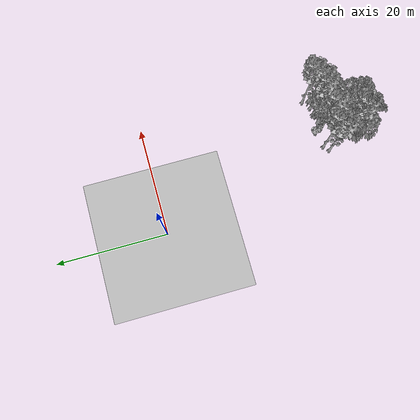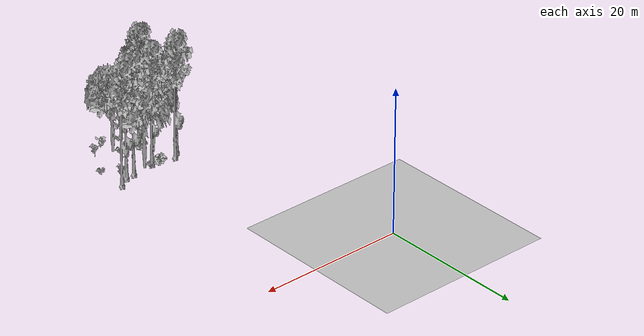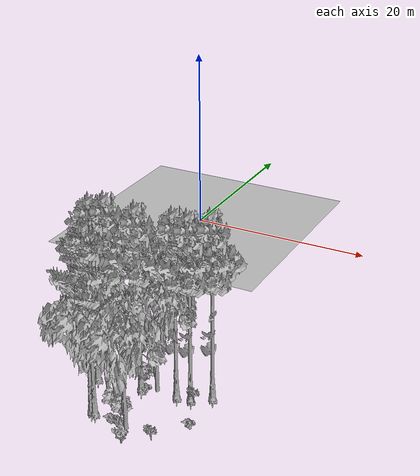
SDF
<sdf version="1.7">
 <world name="default">
  <model name="ground_plane">
   <static>1</static>
   <link name="link">
    <collision name="collision">
     <pose>-50 0 0 0 -0 0</pose>
     <geometry><plane><normal>0 0 1</normal><size>80 80</size></plane></geometry>
     <surface><contact><ode><min_depth>0.01</min_depth><max_vel>0</max_vel></ode></contact></surface>
    </collision>
    <visual name="grass">
     <cast_shadows>0</cast_shadows>
     <geometry>
      <mesh>
       <scale>0.46714285714285714 0.46714285714285714 0.1</scale>
       <uri>file://grass_plane/meshes/grass_plane.dae</uri>
      </mesh>
     </geometry>
    </visual>
   </link>
  </model>
  <model name="Tree 107">
   <static>1</static>
   <pose>14.658804699533285 -31.993765526049405 0 1.57079 -0 0</pose>
   <link name="link">
    <collision name="collision">
     <geometry><mesh><scale>3.5 5 3.5</scale><uri>model://tree_9/meshes/tree_9.obj</uri></mesh></geometry>
    </collision>
    <visual name="visual">
     <geometry><mesh><scale>3.5 5 3.5</scale><uri>model://tree_9/meshes/tree_9.obj</uri></mesh></geometry>
    </visual>
   </link>
  </model>
  <model name="Tree 166">
   <static>1</static>
   <pose>9.337873509005902 -34.62022046360324 0 1.57079 -0 0</pose>
   <link name="link">
    <collision name="collision">
     <geometry><mesh><scale>3.5 5 3.5</scale><uri>model://tree_2/meshes/tree_2.obj</uri></mesh></geometry>
    </collision>
    <visual name="visual">
     <geometry><mesh><scale>3.5 5 3.5</scale><uri>model://tree_2/meshes/tree_2.obj</uri></mesh></geometry>
    </visual>
   </link>
  </model>
  <model name="Tree 238">
   <static>1</static>
   <pose>9.176311424057502 -36.81164937750048 0 1.57079 -0 0</pose>
   <link name="link">
    <collision name="collision">
     <geometry><mesh><scale>3.5 5 3.5</scale><uri>model://tree_2/meshes/tree_2.obj</uri></mesh></geometry>
    </collision>
    <visual name="visual">
     <geometry><mesh><scale>3.5 5 3.5</scale><uri>model://tree_2/meshes/tree_2.obj</uri></mesh></geometry>
    </visual>
   </link>
  </model>
  <model name="Tree 239">
   <static>1</static>
   <pose>12.738174692700497 -32.14178519384373 0 1.57079 -0 0</pose>
   <link name="link">
    <collision name="collision">
     <geometry><mesh><scale>3.5 5 3.5</scale><uri>model://tree_2/meshes/tree_2.obj</uri></mesh></geometry>
    </collision>
    <visual name="visual">
     <geometry><mesh><scale>3.5 5 3.5</scale><uri>model://tree_2/meshes/tree_2.obj</uri></mesh></geometry>
    </visual>
   </link>
  </model>
  <model name="Tree 298">
   <static>1</static>
   <pose>9.719448940887865 -37.15709510666038 0 1.57079 -0 0</pose>
   <link name="link">
    <collision name="collision">
     <geometry><mesh><scale>3.5 5 3.5</scale><uri>model://tree_9/meshes/tree_9.obj</uri></mesh></geometry>
    </collision>
    <visual name="visual">
     <geometry><mesh><scale>3.5 5 3.5</scale><uri>model://tree_9/meshes/tree_9.obj</uri></mesh></geometry>
    </visual>
   </link>
  </model>
  <model name="Tree 371">
   <static>1</static>
   <pose>9.37692090724692 -37.1409944960887 0 1.57079 -0 0</pose>
   <link name="link">
    <collision name="collision">
     <geometry><mesh><scale>3.5 5 3.5</scale><uri>model://tree_9/meshes/tree_9.obj</uri></mesh></geometry>
    </collision>
    <visual name="visual">
     <geometry><mesh><scale>3.5 5 3.5</scale><uri>model://tree_9/meshes/tree_9.obj</uri></mesh></geometry>
    </visual>
   </link>
  </model>
  <model name="Tree 419">
   <static>1</static>
   <pose>7.161942016880808 -32.72213000822702 0 1.57079 -0 0</pose>
   <link name="link">
    <collision name="collision">
     <geometry><mesh><scale>3.5 5 3.5</scale><uri>model://tree_9/meshes/tree_9.obj</uri></mesh></geometry>
    </collision>
    <visual name="visual">
     <geometry><mesh><scale>3.5 5 3.5</scale><uri>model://tree_9/meshes/tree_9.obj</uri></mesh></geometry>
    </visual>
   </link>
  </model>
  <model name="Tree 440">
   <static>1</static>
   <pose>13.17519326429774 -37.98986730310678 0 1.57079 -0 0</pose>
   <link name="link">
    <collision name="collision">
     <geometry><mesh><scale>3.5 5 3.5</scale><uri>model://tree_2/meshes/tree_2.obj</uri></mesh></geometry>
    </collision>
    <visual name="visual">
     <geometry><mesh><scale>3.5 5 3.5</scale><uri>model://tree_2/meshes/tree_2.obj</uri></mesh></geometry>
    </visual>
   </link>
  </model>
  <model name="Tree 490">
   <static>1</static>
   <pose>8.091474518457865 -31.87288681107522 0 1.57079 -0 0</pose>
   <link name="link">
    <collision name="collision">
     <geometry><mesh><scale>3.5 5 3.5</scale><uri>model://tree_9/meshes/tree_9.obj</uri></mesh></geometry>
    </collision>
    <visual name="visual">
     <geometry><mesh><scale>3.5 5 3.5</scale><uri>model://tree_9/meshes/tree_9.obj</uri></mesh></geometry>
    </visual>
   </link>
  </model>
  <model name="Tree 598">
   <static>1</static>
   <pose>15.9525338021025 -31.84780297766042 0 1.57079 -0 0</pose>
   <link name="link">
    <collision name="collision">
     <geometry><mesh><scale>3.5 5 3.5</scale><uri>model://tree_9/meshes/tree_9.obj</uri></mesh></geometry>
    </collision>
    <visual name="visual">
     <geometry><mesh><scale>3.5 5 3.5</scale><uri>model://tree_9/meshes/tree_9.obj</uri></mesh></geometry>
    </visual>
   </link>
  </model>
  <model name="Tree 621">
   <static>1</static>
   <pose>11.39921162305994 -32.436917414812825 0 1.57079 -0 0</pose>
   <link name="link">
    <collision name="collision">
     <geometry><mesh><scale>3.5 5 3.5</scale><uri>model://tree_9/meshes/tree_9.obj</uri></mesh></geometry>
    </collision>
    <visual name="visual">
     <geometry><mesh><scale>3.5 5 3.5</scale><uri>model://tree_9/meshes/tree_9.obj</uri></mesh></geometry>
    </visual>
   </link>
  </model>
  <model name="Tree 624">
   <static>1</static>
   <pose>17.50740266911501 -30.781973754576786 0 1.57079 -0 0</pose>
   <link name="link">
    <collision name="collision">
     <geometry><mesh><scale>3.5 5 3.5</scale><uri>model://tree_9/meshes/tree_9.obj</uri></mesh></geometry>
    </collision>
    <visual name="visual">
     <geometry><mesh><scale>3.5 5 3.5</scale><uri>model://tree_9/meshes/tree_9.obj</uri></mesh></geometry>
    </visual>
   </link>
  </model>
  <model name="Bush 104">
   <static>1</static>
   <pose>11.130229865230518 -31.354251592170108 0 1.57079 -0 0</pose>
   <link name="link">
    <collision name="collision">
     <geometry><mesh><scale>2 2 2</scale><uri>model://bush_1/meshes/bush_1.obj</uri></mesh></geometry>
     <surface><contact><collide_without_contact>false</collide_without_contact></contact></surface>
    </collision>
    <visual name="visual">
     <geometry><mesh><scale>2 2 2</scale><uri>model://bush_1/meshes/bush_1.obj</uri></mesh></geometry>
    </visual>
   </link>
  </model>
  <model name="Bush 108">
   <static>1</static>
   <pose>12.474198161407458 -37.68482215779974 0 1.57079 -0 0</pose>
   <link name="link">
    <collision name="collision">
     <geometry><mesh><scale>2 2 2</scale><uri>model://bush_2/meshes/bush_2.obj</uri></mesh></geometry>
     <surface><contact><collide_without_contact>false</collide_without_contact></contact></surface>
    </collision>
    <visual name="visual">
     <geometry><mesh><scale>2 2 2</scale><uri>model://bush_2/meshes/bush_2.obj</uri></mesh></geometry>
    </visual>
   </link>
  </model>
  <model name="Bush 114">
   <static>1</static>
   <pose>12.014412156141987 -37.395538423548544 0 1.57079 -0 0</pose>
   <link name="link">
    <collision name="collision">
     <geometry><mesh><scale>2 2 2</scale><uri>model://bush_2/meshes/bush_2.obj</uri></mesh></geometry>
     <surface><contact><collide_without_contact>false</collide_without_contact></contact></surface>
    </collision>
    <visual name="visual">
     <geometry><mesh><scale>2 2 2</scale><uri>model://bush_2/meshes/bush_2.obj</uri></mesh></geometry>
    </visual>
   </link>
  </model>
  <model name="Bush 149">
   <static>1</static>
   <pose>11.724101086857928 -32.30651089380632 0 1.57079 -0 0</pose>
   <link name="link">
    <collision name="collision">
     <geometry><mesh><scale>2 2 2</scale><uri>model://bush_2/meshes/bush_2.obj</uri></mesh></geometry>
     <surface><contact><collide_without_contact>false</collide_without_contact></contact></surface>
    </collision>
    <visual name="visual">
     <geometry><mesh><scale>2 2 2</scale><uri>model://bush_2/meshes/bush_2.obj</uri></mesh></geometry>
    </visual>
   </link>
  </model>
  <model name="Bush 250">
   <static>1</static>
   <pose>17.49926523959858 -35.1169182472766 0 1.57079 -0 0</pose>
   <link name="link">
    <collision name="collision">
     <geometry><mesh><scale>2 2 2</scale><uri>model://bush_2/meshes/bush_2.obj</uri></mesh></geometry>
     <surface><contact><collide_without_contact>false</collide_without_contact></contact></surface>
    </collision>
    <visual name="visual">
     <geometry><mesh><scale>2 2 2</scale><uri>model://bush_2/meshes/bush_2.obj</uri></mesh></geometry>
    </visual>
   </link>
  </model>
  <model name="Bush 279">
   <static>1</static>
   <pose>11.374111449895608 -37.39552773509841 0 1.57079 -0 0</pose>
   <link name="link">
    <collision name="collision">
     <geometry><mesh><scale>2 2 2</scale><uri>model://bush_2/meshes/bush_2.obj</uri></mesh></geometry>
     <surface><contact><collide_without_contact>false</collide_without_contact></contact></surface>
    </collision>
    <visual name="visual">
     <geometry><mesh><scale>2 2 2</scale><uri>model://bush_2/meshes/bush_2.obj</uri></mesh></geometry>
    </visual>
   </link>
  </model>
  <model name="Bush 301">
   <static>1</static>
   <pose>10.554609093798788 -35.97783646143084 0 1.57079 -0 0</pose>
   <link name="link">
    <collision name="collision">
     <geometry><mesh><scale>2 2 2</scale><uri>model://bush_1/meshes/bush_1.obj</uri></mesh></geometry>
     <surface><contact><collide_without_contact>false</collide_without_contact></contact></surface>
    </collision>
    <visual name="visual">
     <geometry><mesh><scale>2 2 2</scale><uri>model://bush_1/meshes/bush_1.obj</uri></mesh></geometry>
    </visual>
   </link>
  </model>
  <model name="Bush 374">
   <static>1</static>
   <pose>15.872385319559761 -38.344995270101975 0 1.57079 -0 0</pose>
   <link name="link">
    <collision name="collision">
     <geometry><mesh><scale>2 2 2</scale><uri>model://bush_5/meshes/bush_5.obj</uri></mesh></geometry>
     <surface><contact><collide_without_contact>false</collide_without_contact></contact></surface>
    </collision>
    <visual name="visual">
     <geometry><mesh><scale>2 2 2</scale><uri>model://bush_5/meshes/bush_5.obj</uri></mesh></geometry>
    </visual>
   </link>
  </model>
  <model name="Bush 401">
   <static>1</static>
   <pose>11.936510723464572 -36.667115716619485 0 1.57079 -0 0</pose>
   <link name="link">
    <collision name="collision">
     <geometry><mesh><scale>2 2 2</scale><uri>model://bush_1/meshes/bush_1.obj</uri></mesh></geometry>
     <surface><contact><collide_without_contact>false</collide_without_contact></contact></surface>
    </collision>
    <visual name="visual">
     <geometry><mesh><scale>2 2 2</scale><uri>model://bush_1/meshes/bush_1.obj</uri></mesh></geometry>
    </visual>
   </link>
  </model>
  <model name="Bush 458">
   <static>1</static>
   <pose>16.454256266687914 -32.19712760891085 0 1.57079 -0 0</pose>
   <link name="link">
    <collision name="collision">
     <geometry><mesh><scale>2 2 2</scale><uri>model://bush_5/meshes/bush_5.obj</uri></mesh></geometry>
     <surface><contact><collide_without_contact>false</collide_without_contact></contact></surface>
    </collision>
    <visual name="visual">
     <geometry><mesh><scale>2 2 2</scale><uri>model://bush_5/meshes/bush_5.obj</uri></mesh></geometry>
    </visual>
   </link>
  </model>
  <model name="Bush 507">
   <static>1</static>
   <pose>13.889699845333439 -39.70858656065502 0 1.57079 -0 0</pose>
   <link name="link">
    <collision name="collision">
     <geometry><mesh><scale>2 2 2</scale><uri>model://bush_0/meshes/bush_0.obj</uri></mesh></geometry>
     <surface><contact><collide_without_contact>false</collide_without_contact></contact></surface>
    </collision>
    <visual name="visual">
     <geometry><mesh><scale>2 2 2</scale><uri>model://bush_0/meshes/bush_0.obj</uri></mesh></geometry>
    </visual>
   </link>
  </model>
 </world>
</sdf>
